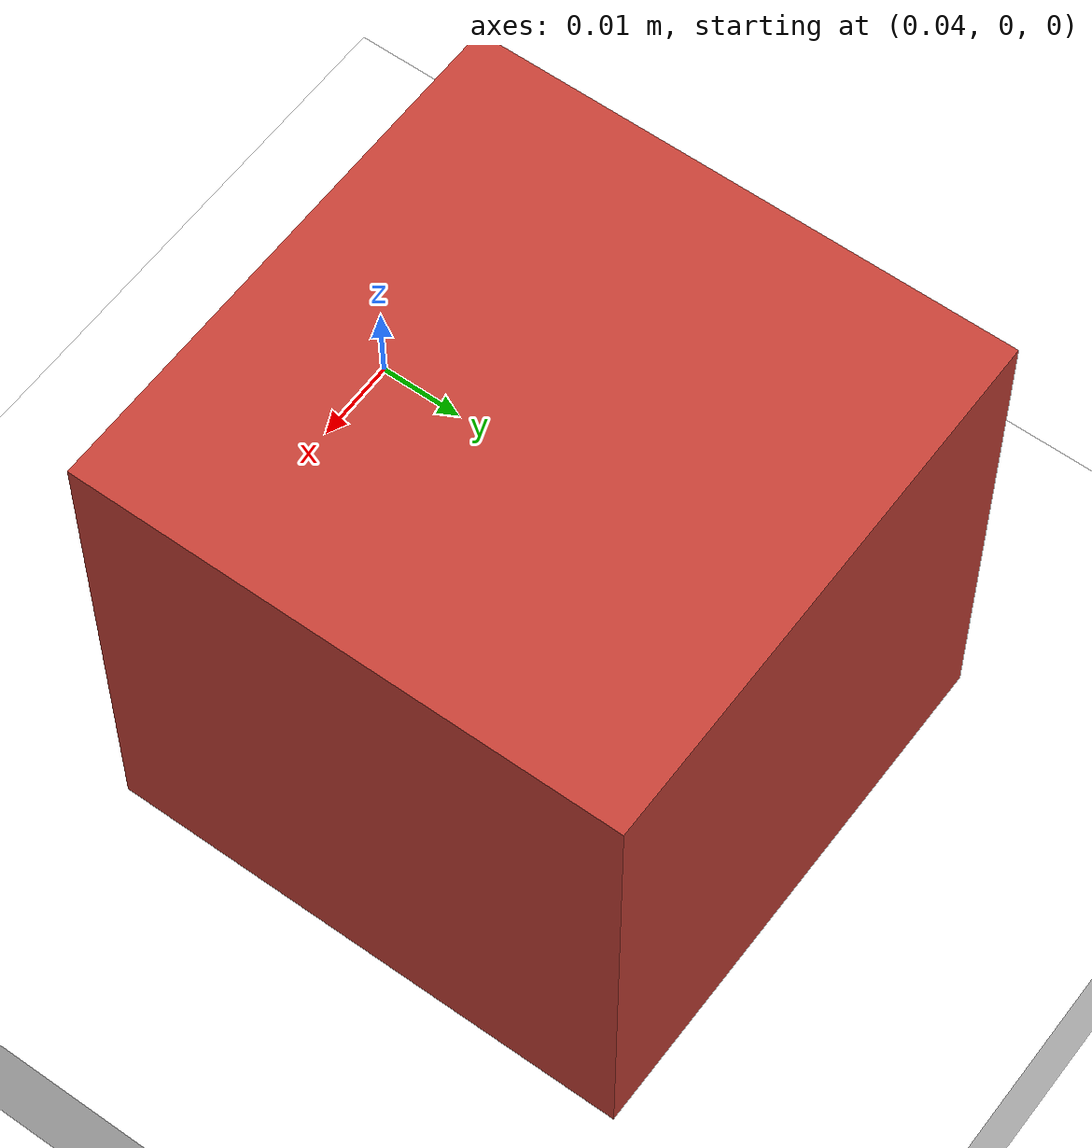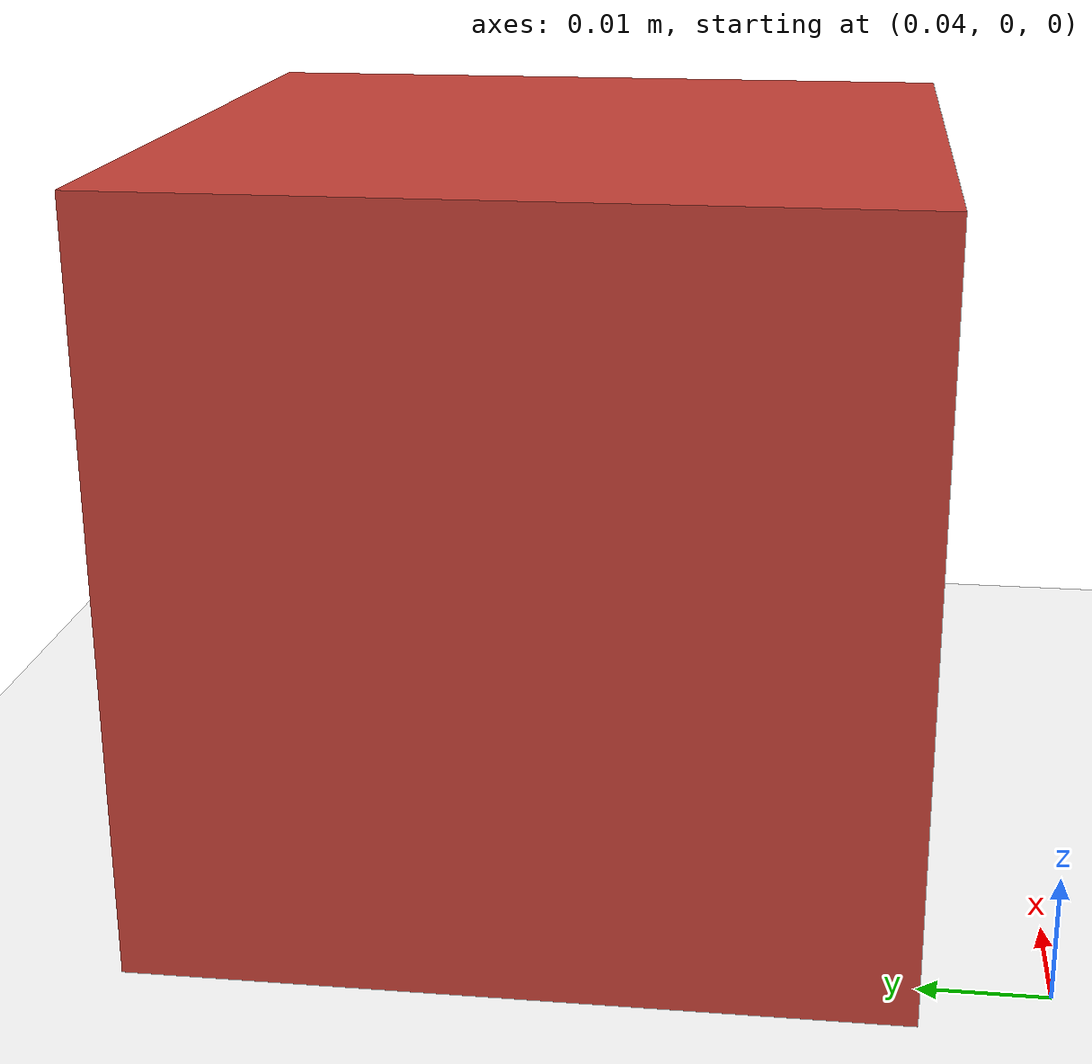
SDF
<?xml version="1.0"?>
<sdf version="1.9">
  <world name="one_box">

    <plugin filename="gz-sim-physics-system" name="gz::sim::systems::Physics"/>
    <plugin filename="gz-sim-scene-broadcaster-system" name="gz::sim::systems::SceneBroadcaster"/>
    <plugin filename="gz-sim-user-commands-system" name="gz::sim::systems::UserCommands"/>
    <plugin filename="gz-sim-sensors-system" name="gz::sim::systems::Sensors">
      <render_engine>ogre2</render_engine>
    </plugin>

    <scene>
      <ambient>0.5 0.5 0.5 1</ambient>
      <background>0.3 0.3 0.3 1</background>
    </scene>

    <!-- Light from above, slightly to one side, so the sides of the box are
         darker than its top. -->
    <light type="directional" name="sun">
      <pose>0 0 2 0 0 0</pose>
      <direction>-0.3 0.2 -1</direction>
      <diffuse>0.8 0.8 0.8 1</diffuse>
      <specular>0.1 0.1 0.1 1</specular>
      <cast_shadows>false</cast_shadows>
    </light>

    <!-- The table: 1.2 m square, with its top surface at height 0. -->
    <model name="table">
      <static>true</static>
      <pose>0 0 -0.01 0 0 0</pose>
      <link name="top">
        <collision name="collision">
          <geometry><box><size>1.2 1.2 0.02</size></box></geometry>
        </collision>
        <visual name="visual">
          <geometry><box><size>1.2 1.2 0.02</size></box></geometry>
          <material>
            <diffuse>1 1 1 1</diffuse>
            <ambient>1 1 1 1</ambient>
            <pbr>
              <metal>
                <albedo_map>textures/table_grid.png</albedo_map>
                <roughness>1.0</roughness>
                <metalness>0.0</metalness>
              </metal>
            </pbr>
          </material>
        </visual>
      </link>
    </model>

    <!-- The red box: a 6 cm cube, its middle 6.5 cm to the right of the middle of
         the table and 4 cm towards the top of the picture. -->
    <model name="red_box">
      <static>true</static>
      <pose>0.065 0.040 0.03 0 0 0</pose>
      <link name="link">
        <collision name="collision">
          <geometry><box><size>0.06 0.06 0.06</size></box></geometry>
        </collision>
        <visual name="visual">
          <geometry><box><size>0.06 0.06 0.06</size></box></geometry>
          <material>
            <diffuse>0.77 0.25 0.21 1</diffuse>
            <ambient>0.77 0.25 0.21 1</ambient>
          </material>
        </visual>
      </link>
    </model>

  </world>
</sdf>
